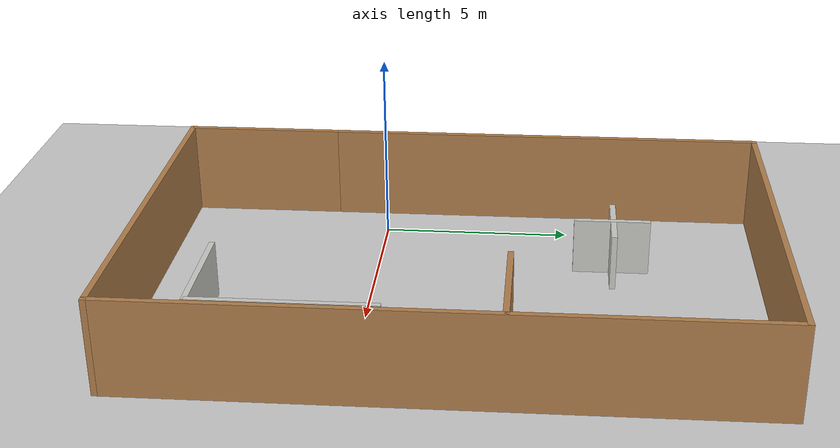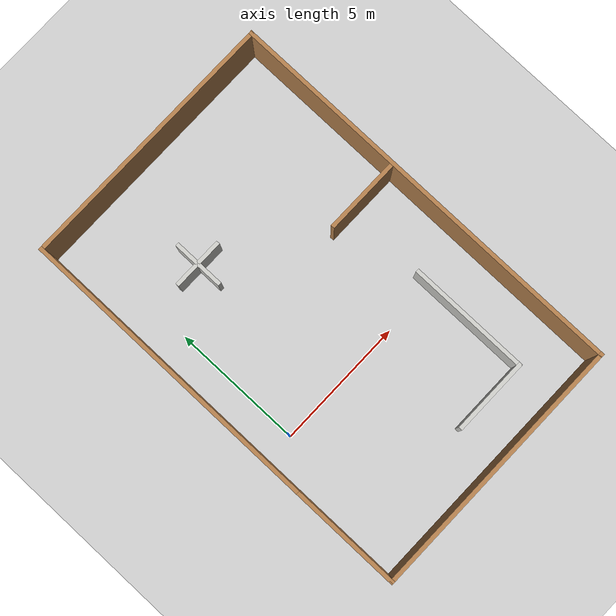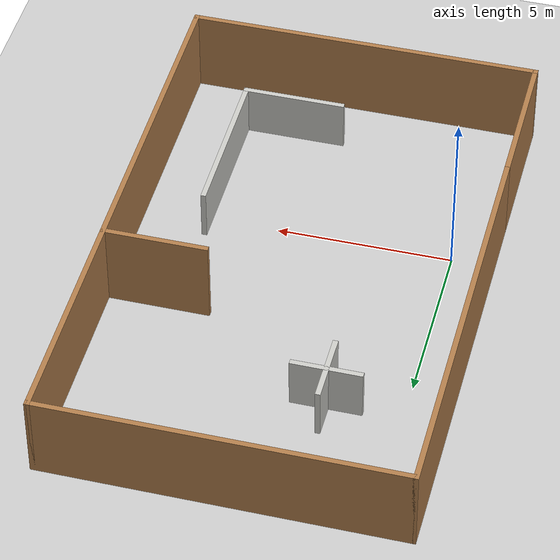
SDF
<sdf version="1.6">
 <world name="default">
  <light name="sun" type="directional">
   <pose>0 0 10 0 -0 0</pose>
   <diffuse>0.8 0.8 0.8 1</diffuse>
   <specular>0.1 0.1 0.1 1</specular>
   <attenuation>
    <range>1000</range>
    <constant>0.9</constant>
    <linear>0.01</linear>
    <quadratic>0.001</quadratic>
   </attenuation>
   <direction>-0.5 0.5 -1</direction>
  </light>
  <model name="ground_plane">
   <static>1</static>
   <link name="link">
    <collision name="collision">
     <geometry><plane><normal>0 0 1</normal><size>100 100</size></plane></geometry>
     <surface><friction><ode><mu>100</mu><mu2>50</mu2></ode></friction></surface>
    </collision>
    <visual name="visual">
     <cast_shadows>0</cast_shadows>
     <geometry><plane><normal>0 0 1</normal><size>100 100</size></plane></geometry>
     <material>
      <script><uri>file://media/materials/scripts/gazebo.material</uri><name>Gazebo/Grey</name></script>
     </material>
    </visual>
   </link>
  </model>
  <gravity>0 0 -9.8</gravity>
  <magnetic_field>6e-06 2.3e-05 -4.2e-05</magnetic_field>
  <atmosphere type="adiabatic"/>
  <physics name="default_physics" default="0" type="ode">
   <max_step_size>0.001</max_step_size>
   <real_time_factor>1</real_time_factor>
   <real_time_update_rate>1000</real_time_update_rate>
  </physics>
  <scene><ambient>0.4 0.4 0.4 1</ambient><background>0.7 0.7 0.7 1</background><shadows>1</shadows></scene>
  <spherical_coordinates>
   <surface_model>EARTH_WGS84</surface_model>
   <latitude_deg>0</latitude_deg>
   <longitude_deg>0</longitude_deg>
   <elevation>0</elevation>
   <heading_deg>0</heading_deg>
  </spherical_coordinates>
  <model name="irl_test5">
   <pose>3.88601 2.23861 0 0 -0 0</pose>
   <link name="Wall_12">
    <collision name="Wall_12_Collision">
     <geometry><box><size>11.75 0.15 2.5</size></box></geometry>
     <pose>0 0 1.25 0 -0 0</pose>
    </collision>
    <visual name="Wall_12_Visual">
     <pose>0 0 1.25 0 -0 0</pose>
     <geometry><box><size>11.75 0.15 2.5</size></box></geometry>
     <material>
      <script><uri>file://media/materials/scripts/gazebo.material</uri><name>Gazebo/Wood</name></script>
      <ambient>1 1 1 1</ambient>
     </material>
    </visual>
    <pose>-5.05 2.125 0 0 -0 1.5708</pose>
   </link>
   <link name="Wall_13">
    <collision name="Wall_13_Collision">
     <geometry><box><size>10.25 0.15 2.5</size></box></geometry>
     <pose>0 0 1.25 0 -0 0</pose>
    </collision>
    <visual name="Wall_13_Visual">
     <pose>0 0 1.25 0 -0 0</pose>
     <geometry><box><size>10.25 0.15 2.5</size></box></geometry>
     <material>
      <script><uri>file://media/materials/scripts/gazebo.material</uri><name>Gazebo/Wood</name></script>
      <ambient>1 1 1 1</ambient>
     </material>
    </visual>
    <pose>0 7.925 0 0 -0 0</pose>
   </link>
   <link name="Wall_14">
    <collision name="Wall_14_Collision">
     <geometry><box><size>16 0.15 2.5</size></box></geometry>
     <pose>0 0 1.25 0 -0 0</pose>
    </collision>
    <visual name="Wall_14_Visual">
     <pose>0 0 1.25 0 -0 0</pose>
     <geometry><box><size>16 0.15 2.5</size></box></geometry>
     <material>
      <script><uri>file://media/materials/scripts/gazebo.material</uri><name>Gazebo/Wood</name></script>
      <ambient>1 1 1 1</ambient>
     </material>
    </visual>
    <pose>5.05 0 0 0 0 -1.5708</pose>
   </link>
   <link name="Wall_15">
    <collision name="Wall_15_Collision">
     <geometry><box><size>10.25 0.15 2.5</size></box></geometry>
     <pose>0 0 1.25 0 -0 0</pose>
    </collision>
    <visual name="Wall_15_Visual">
     <pose>0 0 1.25 0 -0 0</pose>
     <geometry><box><size>10.25 0.15 2.5</size></box></geometry>
     <material>
      <script><uri>file://media/materials/scripts/gazebo.material</uri><name>Gazebo/Wood</name></script>
      <ambient>1 1 1 1</ambient>
     </material>
    </visual>
    <pose>0 -7.925 0 0 -0 3.14159</pose>
   </link>
   <link name="Wall_16">
    <collision name="Wall_16_Collision">
     <geometry><box><size>4.25 0.15 2.5</size></box></geometry>
     <pose>0 0 1.25 0 -0 0</pose>
    </collision>
    <visual name="Wall_16_Visual">
     <pose>0 0 1.25 0 -0 0</pose>
     <geometry><box><size>4.25 0.15 2.5</size></box></geometry>
     <material>
      <script><uri>file://media/materials/scripts/gazebo.material</uri><name>Gazebo/Wood</name></script>
      <ambient>1 1 1 1</ambient>
     </material>
    </visual>
    <pose>-5.05 -5.875 0 0 -0 1.5708</pose>
   </link>
   <link name="Wall_18">
    <collision name="Wall_18_Collision">
     <geometry><box><size>2 0.15 1.5</size></box></geometry>
     <pose>0 0 0.75 0 -0 0</pose>
    </collision>
    <visual name="Wall_18_Visual">
     <pose>0 0 0.75 0 -0 0</pose>
     <geometry><box><size>2 0.15 1.5</size></box></geometry>
     <material>
      <script><uri>file://media/materials/scripts/gazebo.material</uri><name>Gazebo/CeilingTiled</name></script>
      <ambient>0.921569 0.807843 0.615686 1</ambient>
     </material>
    </visual>
    <pose>-1.80401 3.98339 0 0 -0 0</pose>
   </link>
   <link name="Wall_20">
    <collision name="Wall_20_Collision">
     <geometry><box><size>2 0.15 1.5</size></box></geometry>
     <pose>0 0 0.75 0 -0 0</pose>
    </collision>
    <visual name="Wall_20_Visual">
     <pose>0 0 0.75 0 -0 0</pose>
     <geometry><box><size>2 0.15 1.5</size></box></geometry>
     <material>
      <script><uri>file://media/materials/scripts/gazebo.material</uri><name>Gazebo/CeilingTiled</name></script>
      <ambient>0.921569 0.807843 0.615686 1</ambient>
     </material>
    </visual>
    <pose>-1.8014 3.95535 0 0 0 -1.5708</pose>
   </link>
   <link name="Wall_22">
    <collision name="Wall_22_Collision">
     <geometry><box><size>3 0.15 1.5</size></box></geometry>
     <pose>0 0 0.75 0 -0 0</pose>
    </collision>
    <visual name="Wall_22_Visual">
     <pose>0 0 0.75 0 -0 0</pose>
     <geometry><box><size>3 0.15 1.5</size></box></geometry>
     <material>
      <script><uri>file://media/materials/scripts/gazebo.material</uri><name>Gazebo/CeilingTiled</name></script>
      <ambient>0.996078 0.47451 0.0196078 1</ambient>
     </material>
    </visual>
    <pose>1.67999 -6.24561 0 0 -0 0</pose>
   </link>
   <link name="Wall_23">
    <collision name="Wall_23_Collision">
     <geometry><box><size>4.75 0.15 1.5</size></box></geometry>
     <pose>0 0 0.75 0 -0 0</pose>
    </collision>
    <visual name="Wall_23_Visual">
     <pose>0 0 0.75 0 -0 0</pose>
     <geometry><box><size>4.75 0.15 1.5</size></box></geometry>
     <material>
      <script><uri>file://media/materials/scripts/gazebo.material</uri><name>Gazebo/CeilingTiled</name></script>
      <ambient>0.996078 0.47451 0.0196078 1</ambient>
     </material>
    </visual>
    <pose>3.10499 -3.94561 0 0 -0 1.5708</pose>
   </link>
   <link name="Wall_25">
    <collision name="Wall_25_Collision">
     <geometry><box><size>3 0.15 2.5</size></box></geometry>
     <pose>0 0 1.25 0 -0 0</pose>
    </collision>
    <visual name="Wall_25_Visual">
     <pose>0 0 1.25 0 -0 0</pose>
     <geometry><box><size>3 0.15 2.5</size></box></geometry>
     <material>
      <script><uri>file://media/materials/scripts/gazebo.material</uri><name>Gazebo/Wood</name></script>
      <ambient>1 1 1 1</ambient>
     </material>
    </visual>
    <pose>3.5999 1.41476 0 0 -0 3.14159</pose>
   </link>
   <static>1</static>
  </model>
  <model name="human_4_collision_model">
   <pose>0 0 -100 0 0 0</pose>
   <static>true</static>
   <link name="link">
    <collision name="link">
     <pose>0 -0.18 0.05 0 -1.5707963267948966 0</pose>
     <geometry><box><size>0.44 1.62 0.60</size></box></geometry>
    </collision>
   </link>
  </model>
  <model name="human_5_collision_model">
   <pose>0 0 -100 0 0 0</pose>
   <static>true</static>
   <link name="link">
    <collision name="link">
     <pose>0 -0.18 0.05 0 -1.5707963267948966 0</pose>
     <geometry><box><size>0.44 1.62 0.60</size></box></geometry>
    </collision>
   </link>
  </model>
  <model name="human_6_collision_model">
   <pose>0 0 -100 0 0 0</pose>
   <static>true</static>
   <link name="link">
    <collision name="link">
     <pose>0 -0.18 0.05 0 -1.5707963267948966 0</pose>
     <geometry><box><size>0.44 1.62 0.60</size></box></geometry>
    </collision>
   </link>
  </model>
  <model name="human_7_collision_model">
   <pose>0 0 -100 0 0 0</pose>
   <static>true</static>
   <link name="link">
    <collision name="link">
     <pose>0 -0.18 0.05 0 -1.5707963267948966 0</pose>
     <geometry><box><size>0.44 1.62 0.60</size></box></geometry>
    </collision>
   </link>
  </model>
  <model name="human_8_collision_model">
   <pose>0 0 -100 0 0 0</pose>
   <static>true</static>
   <link name="link">
    <collision name="link">
     <pose>0 -0.18 0.05 0 -1.5707963267948966 0</pose>
     <geometry><box><size>0.44 1.62 0.60</size></box></geometry>
    </collision>
   </link>
  </model>
  <model name="human_9_collision_model">
   <pose>0 0 -100 0 0 0</pose>
   <static>true</static>
   <link name="link">
    <collision name="link">
     <pose>0 -0.18 0.05 0 -1.5707963267948966 0</pose>
     <geometry><box><size>0.44 1.62 0.60</size></box></geometry>
    </collision>
   </link>
  </model>
  <model name="human_10_collision_model">
   <pose>0 0 -100 0 0 0</pose>
   <static>true</static>
   <link name="link">
    <collision name="link">
     <pose>0 -0.18 0.05 0 -1.5707963267948966 0</pose>
     <geometry><box><size>0.44 1.62 0.60</size></box></geometry>
    </collision>
   </link>
  </model>
  <model name="human_11_collision_model">
   <pose>0 0 -100 0 0 0</pose>
   <static>true</static>
   <link name="link">
    <collision name="link">
     <pose>0 -0.18 0.05 0 -1.5707963267948966 0</pose>
     <geometry><box><size>0.44 1.62 0.60</size></box></geometry>
    </collision>
   </link>
  </model>
  <model name="human_13_collision_model">
   <pose>0 0 -100 0 0 0</pose>
   <static>true</static>
   <link name="link">
    <collision name="link">
     <pose>0 -0.18 0.05 0 -1.5707963267948966 0</pose>
     <geometry><box><size>0.44 1.62 0.60</size></box></geometry>
    </collision>
   </link>
  </model>
  <model name="human_14_collision_model">
   <pose>0 0 -100 0 0 0</pose>
   <static>true</static>
   <link name="link">
    <collision name="link">
     <pose>0 -0.18 0.05 0 -1.5707963267948966 0</pose>
     <geometry><box><size>0.44 1.62 0.60</size></box></geometry>
    </collision>
   </link>
  </model>
  <model name="human_15_collision_model">
   <pose>0 0 -100 0 0 0</pose>
   <static>true</static>
   <link name="link">
    <collision name="link">
     <pose>0 -0.18 0.05 0 -1.5707963267948966 0</pose>
     <geometry><box><size>0.44 1.62 0.60</size></box></geometry>
    </collision>
   </link>
  </model>
  <model name="human_16_collision_model">
   <pose>0 0 -100 0 0 0</pose>
   <static>true</static>
   <link name="link">
    <collision name="link">
     <pose>0 -0.18 0.05 0 -1.5707963267948966 0</pose>
     <geometry><box><size>0.44 1.62 0.60</size></box></geometry>
    </collision>
   </link>
  </model>
  <model name="human_17_collision_model">
   <pose>0 0 -100 0 0 0</pose>
   <static>true</static>
   <link name="link">
    <collision name="link">
     <pose>0 -0.18 0.05 0 -1.5707963267948966 0</pose>
     <geometry><box><size>0.44 1.62 0.60</size></box></geometry>
    </collision>
   </link>
  </model>
  <model name="human_19_collision_model">
   <pose>0 0 -100 0 0 0</pose>
   <static>true</static>
   <link name="link">
    <collision name="link">
     <pose>0 -0.18 0.05 0 -1.5707963267948966 0</pose>
     <geometry><box><size>0.44 1.62 0.60</size></box></geometry>
    </collision>
   </link>
  </model>
  <model name="human_20_collision_model">
   <pose>0 0 -100 0 0 0</pose>
   <static>true</static>
   <link name="link">
    <collision name="link">
     <pose>0 -0.18 0.05 0 -1.5707963267948966 0</pose>
     <geometry><box><size>0.44 1.62 0.60</size></box></geometry>
    </collision>
   </link>
  </model>
  <model name="human_21_collision_model">
   <pose>0 0 -100 0 0 0</pose>
   <static>true</static>
   <link name="link">
    <collision name="link">
     <pose>0 -0.18 0.05 0 -1.5707963267948966 0</pose>
     <geometry><box><size>0.44 1.62 0.60</size></box></geometry>
    </collision>
   </link>
  </model>
  <model name="human_22_collision_model">
   <pose>0 0 -100 0 0 0</pose>
   <static>true</static>
   <link name="link">
    <collision name="link">
     <pose>0 -0.18 0.05 0 -1.5707963267948966 0</pose>
     <geometry><box><size>0.44 1.62 0.60</size></box></geometry>
    </collision>
   </link>
  </model>
  <model name="human_23_collision_model">
   <pose>0 0 -100 0 0 0</pose>
   <static>true</static>
   <link name="link">
    <collision name="link">
     <pose>0 -0.18 0.05 0 -1.5707963267948966 0</pose>
     <geometry><box><size>0.44 1.62 0.60</size></box></geometry>
    </collision>
   </link>
  </model>
 </world>
</sdf>
